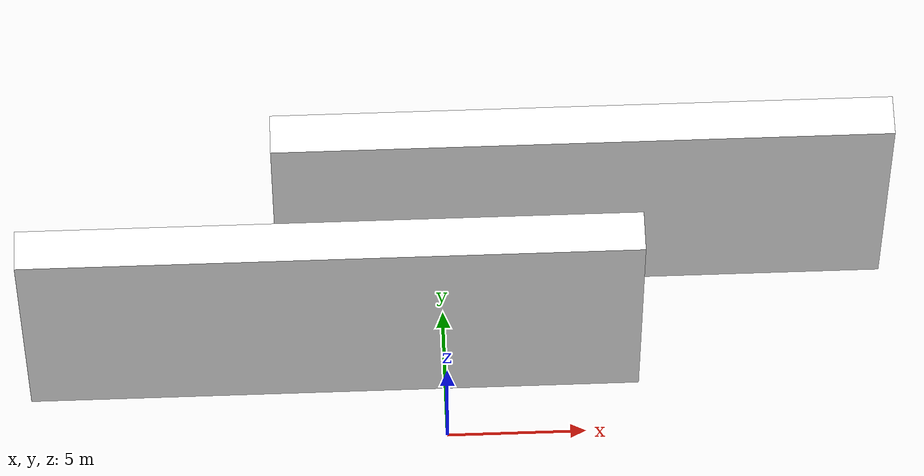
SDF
<sdf version='1.7'>
  <world name='default'>
    <scene>
      <ambient>0.4 0.4 0.4 1</ambient>
      <background>0.25 0.25 0.25 1</background>
      <shadows>0</shadows>
    </scene>
    <light name='sun' type='directional'>
      <cast_shadows>1</cast_shadows>
      <pose>0 0 10 0 -0 0</pose>
      <diffuse>0.7 0.7 0.7 0.5</diffuse>
      <specular>1 1 1 0.5</specular>
      <attenuation>
        <range>100</range>
        <constant>0.9</constant>
        <linear>0.01</linear>
        <quadratic>0.001</quadratic>
      </attenuation>
      <direction>0 0 -1</direction>
      <spot>
        <inner_angle>0</inner_angle>
        <outer_angle>0</outer_angle>
        <falloff>0</falloff>
      </spot>
    </light>
    <model name='ground_plane'>
      <static>1</static>
      <link name='link'>
        <collision name='collision'>
          <geometry>
            <plane>
              <normal>0 0 1</normal>
              <size>100 100</size>
            </plane>
          </geometry>
          <surface>
            <friction>
              <ode>
                <mu>100</mu>
                <mu2>50</mu2>
              </ode>
              <torsional>
                <ode/>
              </torsional>
            </friction>
            <contact>
              <ode/>
            </contact>
            <bounce/>
          </surface>
          <max_contacts>10</max_contacts>
        </collision>
        <visual name='visual'>
          <cast_shadows>1</cast_shadows>
          <geometry>
            <plane>
              <normal>0 0 1</normal>
              <size>100 100</size>
            </plane>
          </geometry>
          <material>
            <script>
              <uri>file://media/materials/scripts/gazebo.material</uri>
              <name>Gazebo/White</name>
            </script>
          </material>
        </visual>
        <self_collide>0</self_collide>
        <kinematic>0</kinematic>
        <gravity>1</gravity>
        <enable_wind>0</enable_wind>
      </link>
    </model>
    <physics name='default_physics' default='0' type='ode'>
      <ode>
        <solver>
          <type>quick</type>
          <iters>10</iters>
          <sor>1.3</sor>
          <use_dynamic_moi_rescaling>0</use_dynamic_moi_rescaling>
        </solver>
        <constraints>
          <cfm>0</cfm>
          <erp>0.2</erp>
          <contact_max_correcting_vel>100</contact_max_correcting_vel>
          <contact_surface_layer>0.001</contact_surface_layer>
        </constraints>
      </ode>
      <max_step_size>0.004</max_step_size>
      <real_time_factor>1</real_time_factor>
      <real_time_update_rate>250</real_time_update_rate>
    </physics>
    <gravity>0 0 -9.8066</gravity>
    <magnetic_field>6e-06 2.3e-05 -4.2e-05</magnetic_field>
    <atmosphere type='adiabatic'/>
    <scene>
      <ambient>0.4 0.4 0.4 1</ambient>
      <background>0.7 0.7 0.7 1</background>
      <shadows>1</shadows>
    </scene>
    <spherical_coordinates>
      <surface_model>EARTH_WGS84</surface_model>
      <latitude_deg>0</latitude_deg>
      <longitude_deg>0</longitude_deg>
      <elevation>0</elevation>
      <heading_deg>0</heading_deg>
    </spherical_coordinates>

    <model name='long_high_wall'>
      <link name='chassis'>
        <pose>0 0 5 0 -0 0</pose>
        <self_collide>0</self_collide>
        <enable_wind>0</enable_wind>
        <kinematic>0</kinematic>
        <gravity>1</gravity>
        <inertial>
          <mass>1</mass>
          <pose>0 0 0 0 -0 0</pose>
          <inertia>
            <ixx>1</ixx>
            <ixy>0</ixy>
            <ixz>0</ixz>
            <iyy>1</iyy>
            <iyz>0</iyz>
            <izz>1</izz>
          </inertia>
        </inertial>
        <visual name='visual'>
          <geometry>
            <mesh>
              <uri>model://brick_box_1/meshes/simple_box.dae</uri>
              <scale>22 1.5 10</scale>
            </mesh>
          </geometry>
          <material>
            <script><size>22 1.5 10</size>
              <uri>model://brick_box_1/materials/scripts</uri>
              <uri>model://brick_box_1/materials/textures</uri>
              <name>BrickBox/Diffuse</name>
            </script>
            <shader type='pixel'>
              <normal_map>__default__</normal_map>
            </shader>
            <ambient>1 1 1 1</ambient>
            <diffuse>1 1 1 1</diffuse>
            <specular>0 0 0 1</specular>
            <emissive>0 0 0 1</emissive>
          </material>
          <pose>0 0 0 0 -0 0</pose>
          <transparency>0</transparency>
          <cast_shadows>1</cast_shadows>
        </visual>
        <collision name='collision'>
          <laser_retro>0</laser_retro>
          <max_contacts>10</max_contacts>
          <pose>0 0 0 0 -0 0</pose>
          <geometry>
            <box>
              <size>22 1.5 10</size>
            </box>
          </geometry>
          <surface>
            <friction>
              <ode>
                <mu>1</mu>
                <mu2>1</mu2>
                <fdir1>0 0 0</fdir1>
                <slip1>0</slip1>
                <slip2>0</slip2>
              </ode>
              <torsional>
                <coefficient>1</coefficient>
                <patch_radius>0</patch_radius>
                <surface_radius>0</surface_radius>
                <use_patch_radius>1</use_patch_radius>
                <ode>
                  <slip>0</slip>
                </ode>
              </torsional>
            </friction>
            <bounce>
              <restitution_coefficient>0</restitution_coefficient>
              <threshold>1e+06</threshold>
            </bounce>
            <contact>
              <collide_without_contact>0</collide_without_contact>
              <collide_without_contact_bitmask>1</collide_without_contact_bitmask>
              <collide_bitmask>1</collide_bitmask>
              <ode>
                <soft_cfm>0</soft_cfm>
                <soft_erp>0.2</soft_erp>
                <kp>1e+13</kp>
                <kd>1</kd>
                <max_vel>0.01</max_vel>
                <min_depth>0</min_depth>
              </ode>
              <bullet>
                <split_impulse>1</split_impulse>
                <split_impulse_penetration_threshold>-0.01</split_impulse_penetration_threshold>
                <soft_cfm>0</soft_cfm>
                <soft_erp>0.2</soft_erp>
                <kp>1e+13</kp>
                <kd>1</kd>
              </bullet>
            </contact>
          </surface>
        </collision>
      </link>
      <static>1</static>
      <allow_auto_disable>1</allow_auto_disable>
      <pose>-4.0028 2.65776 0 0 -0 0</pose>
    </model>

    <model name='long_high_wall1'>
      <link name='chassis'>
        <pose>0 0 5 0 -0 0</pose>
        <self_collide>0</self_collide>
        <enable_wind>0</enable_wind>
        <kinematic>0</kinematic>
        <gravity>1</gravity>
        <inertial>
          <mass>1</mass>
          <pose>0 0 0 0 -0 0</pose>
          <inertia>
            <ixx>1</ixx>
            <ixy>0</ixy>
            <ixz>0</ixz>
            <iyy>1</iyy>
            <iyz>0</iyz>
            <izz>1</izz>
          </inertia>
        </inertial>
        <visual name='visual'>
          <geometry>
            <mesh>
              <uri>model://brick_box_1/meshes/simple_box.dae</uri>
              <scale>22 1.5 10</scale>
            </mesh>
          </geometry>
          <material>
            <script>
              <uri>model://brick_box_1/materials/scripts</uri>
              <uri>model://brick_box_1/materials/textures</uri>
              <name>BrickBox/Diffuse</name>
            </script>
            <shader type='pixel'>
              <normal_map>__default__</normal_map>
            </shader>
            <ambient>1 1 1 1</ambient>
            <diffuse>1 1 1 1</diffuse>
            <specular>0 0 0 1</specular>
            <emissive>0 0 0 1</emissive>
          </material>
          <pose>0 0 0 0 -0 0</pose>
          <transparency>0</transparency>
          <cast_shadows>1</cast_shadows>
        </visual>
        <collision name='collision'>
          <laser_retro>0</laser_retro>
          <max_contacts>10</max_contacts>
          <pose>0 0 0 0 -0 0</pose>
          <geometry>
            <box>
              <size>22 1.5 10</size>
            </box>
          </geometry>
          <surface>
            <friction>
              <ode>
                <mu>1</mu>
                <mu2>1</mu2>
                <fdir1>0 0 0</fdir1>
                <slip1>0</slip1>
                <slip2>0</slip2>
              </ode>
              <torsional>
                <coefficient>1</coefficient>
                <patch_radius>0</patch_radius>
                <surface_radius>0</surface_radius>
                <use_patch_radius>1</use_patch_radius>
                <ode>
                  <slip>0</slip>
                </ode>
              </torsional>
            </friction>
            <bounce>
              <restitution_coefficient>0</restitution_coefficient>
              <threshold>1e+06</threshold>
            </bounce>
            <contact>
              <collide_without_contact>0</collide_without_contact>
              <collide_without_contact_bitmask>1</collide_without_contact_bitmask>
              <collide_bitmask>1</collide_bitmask>
              <ode>
                <soft_cfm>0</soft_cfm>
                <soft_erp>0.2</soft_erp>
                <kp>1e+13</kp>
                <kd>1</kd>
                <max_vel>0.01</max_vel>
                <min_depth>0</min_depth>
              </ode>
              <bullet>
                <split_impulse>1</split_impulse>
                <split_impulse_penetration_threshold>-0.01</split_impulse_penetration_threshold>
                <soft_cfm>0</soft_cfm>
                <soft_erp>0.2</soft_erp>
                <kp>1e+13</kp>
                <kd>1</kd>
              </bullet>
            </contact>
          </surface>
        </collision>
      </link>
      <static>1</static>
      <allow_auto_disable>1</allow_auto_disable>
      <pose>5.0028 7.0 0 0 -0 0</pose>
    </model>
  </world>
</sdf>
